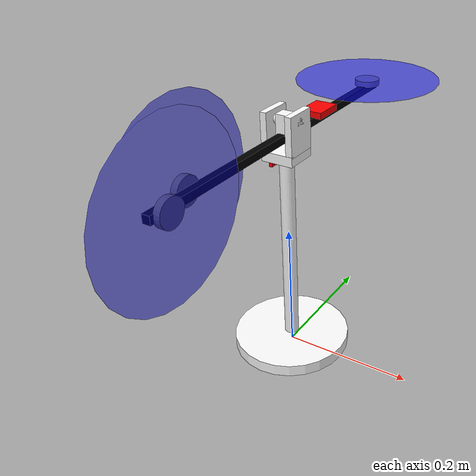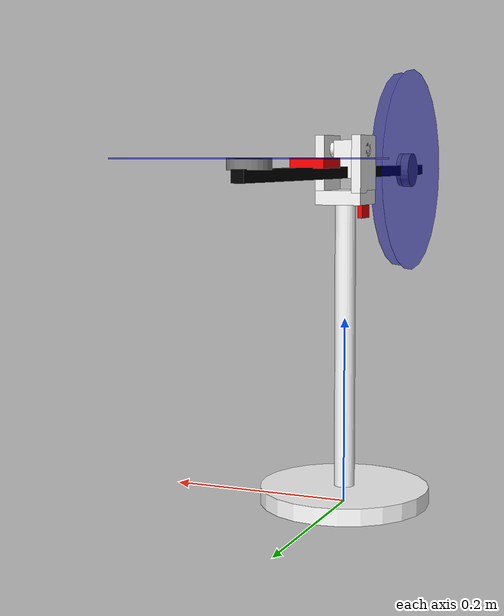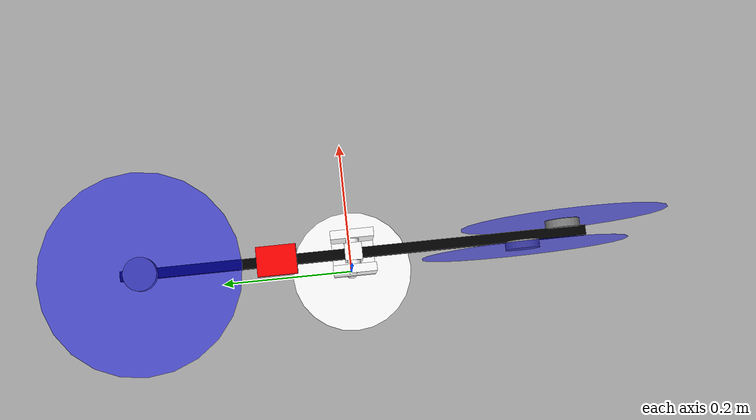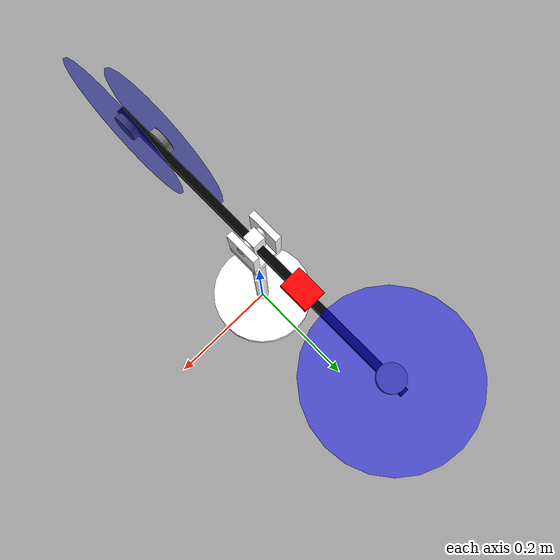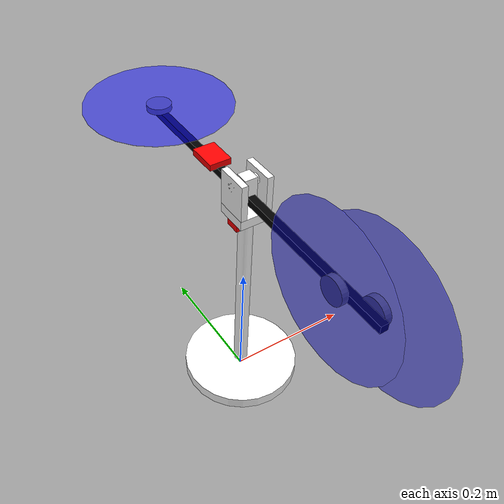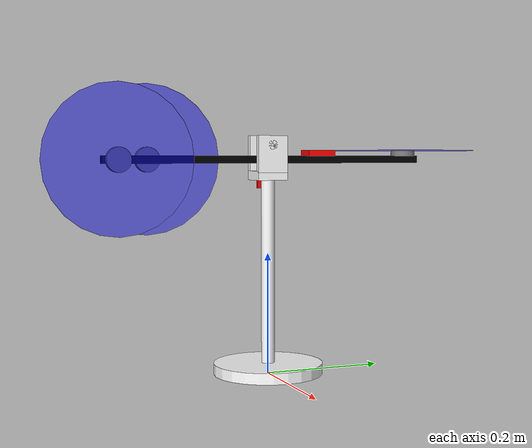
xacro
<?xml version="1.0"?>
<robot xmlns:xacro="http://www.ros.org/wiki/xacro"  name="robot">

    <!-- Example link -->
    <xacro:include filename="robot_core.xacro"/>
    <xacro:include filename="bldc_motor.xacro"/>
    <xacro:include filename="imu.xacro"/>
    <xacro:include filename="camera.xacro"/>

</robot>

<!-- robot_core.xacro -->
<robot xmlns:xacro="http://www.ros.org/wiki/xacro" >

    <xacro:include filename="inertial_macros.xacro"/>

    <material name="white">
        <color rgba="1.0 1.0 1.0 1.0"/>
    </material>

    <material name="black">
        <color rgba="0.0 0.0 0.0 1.0"/>
    </material>

    <material name="gray">
        <color rgba="0.5 0.5 0.5 1.0"/>
    </material>

    <material name="blue">
        <color rgba="0.0 0.0 1.0 0.5"/>
    </material>

    <material name="red">
        <color rgba="1 0 0 1"/>
    </material>

    <link name="base_link">

    </link>
    <!-- Base Plate -->
    <joint name="base_plate_joint" type="fixed">
        <origin xyz="0.0 0.0 0.0091" rpy="0.0 0.0 0.0"/>
        <parent link="base_link"/>
        <child link="base_plate_link"/>
    </joint>

    <link name="base_plate_link">
        <visual>
            <geometry>
                <cylinder radius="0.091" length="0.0182"/>
            </geometry>
            <material name="white"/>
        </visual>
        <collision>
            <geometry>
                <cylinder radius="0.091" length="0.0182"/>
            </geometry>
        </collision>
        <xacro:inertial_cylinder mass = "1.278403083" length="0.0182" radius="0.091">
            <origin xyz = "0 0 0" rpy = "0 0 0"/>
        </xacro:inertial_cylinder>
    </link>

    <gazebo reference="base_plate_link">
        <material>Gazebo/White</material>
    </gazebo>

    <!-- Base Plate Done -->

    <!-- Vertical Rod Support -->
    <joint name="support_base_joint" type="fixed">
        <origin xyz="0.0 0.0 0.16" rpy="0.0 0.0 0.0"/>
        <parent link="base_plate_link"/>
        <child link="support_base_link"/>
    </joint>

    <link name="support_base_link">
        <visual>
            <origin xyz="0.0 0.0 0.0" rpy="0.0 0.0 0.0"/>
            <geometry>
                <cylinder radius="0.011" length="0.32"/>
            </geometry>
            <material name="white"/>
        </visual>
        <collision>
            <geometry>
                <cylinder radius="0.011" length="0.32"/>
            </geometry>
        </collision>
        <xacro:inertial_cylinder mass = "0.328434662377" length="0.32" radius="0.091">
            <origin xyz="0.0 0.0 0.0" rpy="0.0 0.0 0.0"/>
        </xacro:inertial_cylinder>
    </link>

    <gazebo reference="support_base_link">
        <material>Gazebo/White</material>
    </gazebo>

    <!-- Vertical Rod is done -->

    <!-- U shape base -->
    <joint name="u_shape_base" type="continuous">
        <parent link="support_base_link"/>
        <child link="u_shape_base_link"/>
        <origin xyz="0.0 0.0 0.16" rpy="0.0 0.0 0.0"/>

        <axis xyz="0 0 1"/>
    </joint>

    <link name="u_shape_base_link">
        <visual>
            <origin xyz="0.0 0.0 0.0" rpy="0.0 0.0 0.0"/>
            <geometry>
                <box size="0.05 0.05 0.015"/>
            </geometry>
            <material name="white"/>
        </visual>

        <collision>
            <geometry>
                <box size="0.05 0.05 0.015"/>
            </geometry>
        </collision>

        <xacro:inertial_box mass= "0.10125" x="0.05" y="0.05" z="0.015">
            <origin xyz="0 0 0" rpy="0 0 0"/>
        </xacro:inertial_box>
    </link>

    <gazebo reference="u_shape_base_link">
        <material>Gazebo/White</material>
    </gazebo>

    <!-- U Shape Pillars -->
    <joint name="u_shape_pillar_r_joint" type="fixed">
        <parent link="u_shape_base_link"/>
        <child link="u_shape_pillar_r_link"/>
        <origin xyz="0.02 0.0 0.005" rpy="0.0 0.0 0.0"/>
    </joint>

    <link name="u_shape_pillar_r_link">
        <visual>
            <origin xyz="0.0 0.0 0.03" rpy="0.0 0.0 0.0"/>
            <geometry>
                <box size="0.01 0.05 0.06"/>
            </geometry>
            <material name="white"/>
        </visual>

        <collision>
            <origin xyz="0.0 0.0 0.03" rpy="0.0 0.0 0.0"/>
            <geometry>
                <box size="0.01 0.05 0.06"/>
            </geometry>
        </collision>

        <xacro:inertial_box mass= "0.081" x="0.01" y="0.05" z="0.06">
            <origin xyz="0 0 0.3" rpy="0 0 0"/>
        </xacro:inertial_box>
    </link>

    <gazebo reference="u_shape_pillar_r_link">
        <material>Gazebo/White</material>
    </gazebo>

    <joint name="u_shape_pillar_l_joint" type="fixed">
        <parent link="u_shape_base_link"/>
        <child link="u_shape_pillar_l_link"/>
        <origin xyz="-0.02 0.0 0.005" rpy="0.0 0.0 0.0"/>
    </joint>

    <link name="u_shape_pillar_l_link">
        <visual>
            <origin xyz="0.0 0.0 0.03" rpy="0.0 0.0 0.0"/>
            <geometry>
                <box size="0.01 0.05 0.06"/>
            </geometry>
            <material name="white"/>
        </visual>

        <collision>
            <origin xyz="0.0 0.0 0.03" rpy="0.0 0.0 0.0"/>
            <geometry>
                <box size="0.01 0.05 0.06"/>
            </geometry>
        </collision>

        <xacro:inertial_box mass= "0.081" x="0.01" y="0.05" z="0.06">
            <origin xyz="0 0 0.3" rpy="0 0 0"/>
        </xacro:inertial_box>
    </link>

    <gazebo reference="u_shape_pillar_l_link">
        <material>Gazebo/White</material>
    </gazebo>

    <!-- pillars and fork done -->

    <!-- Pin Connecting both pillars -->
    <joint name="pillar_connecting_joint" type="fixed">
        <parent link="u_shape_base_link"/>
        <child link="pillar_connecting_link"/>
        <origin xyz="0.0 0.0 0.05" rpy="0.0 ${pi/2} 0.0"/>
    </joint>

    <link name="pillar_connecting_link">
        <visual>
            <origin xyz="0.0 0.0 0.0" rpy="0.0 0.0 0.0"/>
            <geometry>
                <cylinder radius="0.0075" length="0.05"/>
            </geometry>
            <material name="white"/>
        </visual>

        <collision>
            <geometry>
                <cylinder radius="0.0075" length="0.05"/>
            </geometry>
        </collision>

        <xacro:inertial_cylinder mass= "0.023856469" radius="0.0075" length="0.05">
            <origin xyz="0 0 0.0" rpy="0 0 0"/>
        </xacro:inertial_cylinder>
    </link>

    <gazebo reference="pillar_connecting_link">
        <material>Gazebo/White</material>
    </gazebo>

    <!-- Connecting Pin Done -->

    <!-- Hinge at the Pin -->
    <joint name="pin_hinge_joint" type="revolute">
        <parent link="pillar_connecting_link"/>
        <child link="pin_hinge_link"/>
        <origin xyz="0.0 0.0 0.0" rpy="0.0 0.0 ${pi/2}"/>
        <axis xyz="0.0 0.0 1"/>
        <limit lower="-0.39" upper="0.39" effort="0.0" velocity="0.0"/>
    </joint>

    <link name="pin_hinge_link">
        <visual>
            <origin xyz="0.0 -0.01 0.0" rpy="${pi/2} 0.0 0.0"/>
            <geometry>
                <box size="0.02 0.02 0.04"/>
            </geometry>
            <material name="white"/>
        </visual>

        <collision>
            <geometry>
                <box size="0.02 0.02 0.04"/>
            </geometry>
        </collision>

        <xacro:inertial_box mass= "0.0432" x="0.02" y="0.02" z="0.04">
            <origin xyz="0 0 0" rpy="0 0 0"/>
        </xacro:inertial_box>
    </link>

    <gazebo reference="pin_hinge_link">
        <material>Gazebo/White</material>
    </gazebo>
    <!-- Main Beam Link -->

    <joint name="beam_joint" type="fixed">
        <parent link="pin_hinge_link"/>
        <child link="beam_link"/>
        <origin xyz="0.0 -0.02375 0.0" rpy="0.0 0.0 ${pi/2}"/>
    </joint>

    <link name="beam_link">
        <visual>
            <origin xyz="0.0 0.0 0.0" rpy="0.0 0.0 0.0"/>
            <geometry>
                <box size="0.012 0.55 0.012"/>
            </geometry>
            <material name="black"/>
        </visual>

        <collision>
            <geometry>
                <box size="0.012 0.55 0.012"/>
            </geometry>
        </collision>

        <xacro:inertial_box mass= "0.21384" x="0.012" y="0.55" z="0.012">
            <origin xyz="0 0 0" rpy="0 0 0"/>
        </xacro:inertial_box>
    </link>

    <gazebo reference="beam_link">
        <material>Gazebo/Black</material>
    </gazebo>
</robot>

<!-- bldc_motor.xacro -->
<robot xmlns:xacro="http://www.ros.org/wiki/xacro" name="bldc_motor">
    <xacro:include filename="inertial_macros.xacro"/>
    <!-- Bldc Motors Base -->
    <link name="base_link_motor_b_L">
        <visual>
            <geometry>
                <cylinder radius="0.02" length="0.01"/>
            </geometry>
            <origin xyz="0.0 0.0 0.0" rpy="0.0 0.0 0.0"/>
            <material name="gray"/>
        </visual>

        <collision>
            <geometry>
                <cylinder radius="0.02" length="0.01"/>
            </geometry>
        </collision>

        <xacro:inertial_cylinder mass= "0.06" radius="0.02" length="0.01">
            <origin xyz="0 0 0" rpy="0 0 0"/>
        </xacro:inertial_cylinder>
    </link>

    <joint name="base_joint_b_L" type="fixed">
        <parent link="beam_link"/>
        <child link="base_link_motor_b_L"/>
        <origin xyz="0.0 0.25 0.01" rpy="0.0 0.0 0.0"/>
    </joint>

    <link name="base_link_motor_b_R">
        <visual>
            <geometry>
                <cylinder radius="0.02" length="0.01"/>
            </geometry>
            <origin xyz="0.0 0.0 0.0" rpy="0.0 ${pi} 0.0"/>
            <material name="gray"/>
        </visual>

        <collision>
            <geometry>
                <cylinder radius="0.02" length="0.01"/>
            </geometry>
        </collision>

        <xacro:inertial_cylinder mass= "0.06" radius="0.02" length="0.01">
            <origin xyz="0 0 0" rpy="0 0 0"/>
        </xacro:inertial_cylinder>
    </link>

    <joint name="base_joint_b_R" type="fixed">
        <parent link="beam_link"/>
        <child link="base_link_motor_b_R"/>
        <origin xyz="0.0 0.20 -0.01" rpy="0.0 0.0 0.0"/>
    </joint>

    <link name="base_link_motor_pitch">
        <visual>
            <geometry>
                <cylinder radius="0.02" length="0.01"/>
            </geometry>
            <origin xyz="0.0 0.0 0.0" rpy="0.0 0.0 0.0"/>
            <material name="gray"/>
        </visual>

        <collision>
            <geometry>
                <cylinder radius="0.02" length="0.01"/>
            </geometry>
        </collision>
        <xacro:inertial_cylinder mass= "0.06" radius="0.02" length="0.01">
            <origin xyz="0 0 0" rpy="0 0 0"/>
        </xacro:inertial_cylinder>
    </link>

    <joint name="base_joint__motor_pitch" type="fixed">
        <parent link="beam_link"/>
        <child link="base_link_motor_pitch"/>
        <origin xyz="0.01 -0.25 0.0" rpy="0.0 ${pi/2} 0.0"/>
    </joint>

    <!-- Rotors for BLDC  -->

    <link name="rotor_L">
        <visual>
            <geometry>
                <cylinder radius="0.12" length="0.001"/>
            </geometry>
            <origin xyz="0.0 0.0 0.0" rpy="0.0 0.0 0.0"/>
            <material name="blue"/>
        </visual>

        <collision>
            <geometry>
                <cylinder radius="0.12" length="0.001"/>
            </geometry>
        </collision>

        <xacro:inertial_cylinder mass= "0.02" radius="0.12" length="0.001">
            <origin xyz="0 0 0" rpy="0 0 0"/>
        </xacro:inertial_cylinder>
    </link>

    <joint name="rotor_l_joint" type="continuous">
        <parent link="base_link_motor_b_L"/>
        <child link="rotor_L"/>
        <origin xyz="0.0 0.0 0.005" rpy="0.0 0.0 0.0"/>
        <axis xyz="0.0 0.0 1.0"/>
    </joint>

    <link name="rotor_R">
        <visual>
            <geometry>
                <cylinder radius="0.12" length="0.001"/>
            </geometry>
            <origin xyz="0.0 0.0 0.0" rpy="0.0 0.0 0.0"/>
            <material name="blue"/>
        </visual>

        <collision>
            <geometry>
                <cylinder radius="0.12" length="0.001"/>
            </geometry>
        </collision>
        <xacro:inertial_cylinder mass= "0.02" radius="0.12" length="0.001">
            <origin xyz="0 0 0" rpy="0 0 0"/>
        </xacro:inertial_cylinder>
    </link>

    <joint name="rotor_r_joint" type="continuous">
        <parent link="base_link_motor_b_R"/>
        <child link="rotor_R"/>
        <origin xyz="0.0 0.0 -0.005" rpy="0.0 0.0 0.0"/>
        <axis xyz="0.0 0.0 1.0"/>
    </joint>

    <link name="rotor_pitch">
        <visual>
            <geometry>
                <cylinder radius="0.12" length="0.001"/>
            </geometry>
            <origin xyz="0.0 0.0 0.0" rpy="0.0 0.0 0.0"/>
            <material name="blue"/>
        </visual>

        <collision>
            <geometry>
                <cylinder radius="0.12" length="0.001"/>
            </geometry>
        </collision>

        <xacro:inertial_cylinder mass= "0.02" radius="0.12" length="0.001">
            <origin xyz="0 0 0" rpy="0 0 0"/>
        </xacro:inertial_cylinder>
    </link>

    <joint name="rotor_pitch_joint" type="continuous">
        <parent link="base_link_motor_pitch"/>
        <child link="rotor_pitch"/>
        <origin xyz="0.0 0.0 0.005" rpy="0.0 0.0 0.0"/>
        <axis xyz="0.0 0.0 1.0"/>
    </joint>
</robot>

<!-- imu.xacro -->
<robot xmlns:xacro="http://www.ros.org/wiki/xacro">
    <joint name="imu_joint" type="fixed">
        <parent link="beam_link"/>
        <child link="imu_link"/>
        <origin xyz="0.01 -0.09 0.0" rpy="0.0 0.0 0.0"/>
    </joint>

    <link name="imu_link">
        <visual>
            <geometry>
                <box size="0.01 0.047 0.035"/>
            </geometry>
            <material name="red"/>
        </visual>

        <collision>
            <geometry>
                <box size="0.01 0.047 0.035"/>
            </geometry>
        </collision>

        <xacro:inertial_box mass= "0.001" x="0.01" y="0.047" z="0.035">
            <origin xyz="0 0 0" rpy="0 0 0"/>
        </xacro:inertial_box>
    </link>

    <gazebo reference="imu_link">
        <material>Gazebo/Red</material>

        <sensor name="my_imu" type="imu">
            <always_on>true</always_on>
            <update_rate>30</update_rate>

            <plugin name="my_imu_plugin" filename="libgazebo_ros_imu_sensor.so">
                <ros>
                    <namespace>imu</namespace>
                    <remapping>~/out:=data</remapping>
                </ros>
                <frame_name>imu_link</frame_name>
            </plugin>
        </sensor>
    </gazebo>
</robot>

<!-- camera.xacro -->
<robot xmlns:xacro="http://www.ros.org/wiki/xacro">

    <joint name="camera_joint" type="fixed">
        <parent link="u_shape_base_link"/>
        <child link="camera_link"/>
        <origin xyz="-0.02 0.0 -0.01" rpy="0 ${pi/2} 0.0"/>
    </joint>

    <link name="camera_link">
        <visual>
            <geometry>
                <box size="0.023 0.023 0.005"/>
            </geometry>
            <material name="red"/>
        </visual>

        <collision>
            <geometry>
                <box size="0.023 0.023 0.005"/>
            </geometry>
        </collision>

        <xacro:inertial_box mass= "0.001" x="0.023" y="0.023" z="0.005">
            <origin xyz="0 0 0" rpy="0 0 0"/>
        </xacro:inertial_box>

    </link>

    <joint name="camera_optical_joint" type="fixed">
        <parent link="camera_link"/>
        <child link="camera_link_optical"/>
        <origin xyz="0 0 0" rpy="0.0 ${pi/2} 0.0"/>
    </joint>

    <link name="camera_link_optical">

    </link>

    <gazebo reference="camera_link">
        <material>Gazebo/Red</material>

        <sensor name="camera" type="camera">
            <pose> 0 0 0 0 0 0</pose>
            <visualize>true</visualize>
            <update_rate>10</update_rate>
            <camera>
                <horizontal_fov>1.089</horizontal_fov>
                <vertical_fov>1.089</vertical_fov>
                <image>
                    <format>R8G8B8</format>
                    <width>640</width>
                    <height>48</height>
                </image>
                <clip>
                    <near>0.05</near>
                    <far>8.0</far>
                </clip>
            </camera>
            <plugin name="camera_controller" filename="libgazebo_ros_camera.so">
                <frame_name>camera_link_optical</frame_name>
            </plugin>
        </sensor>
    </gazebo>
</robot>
